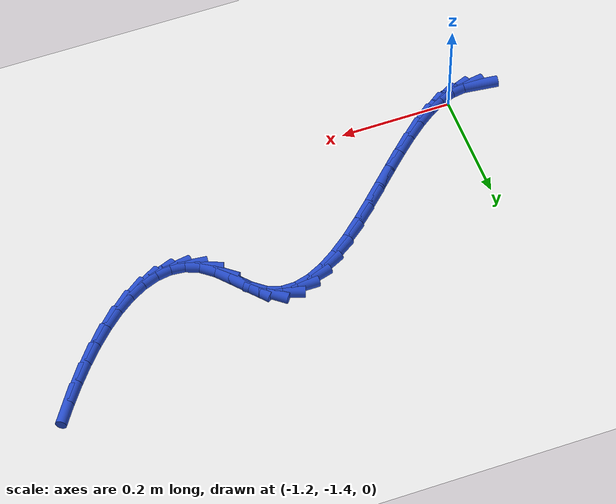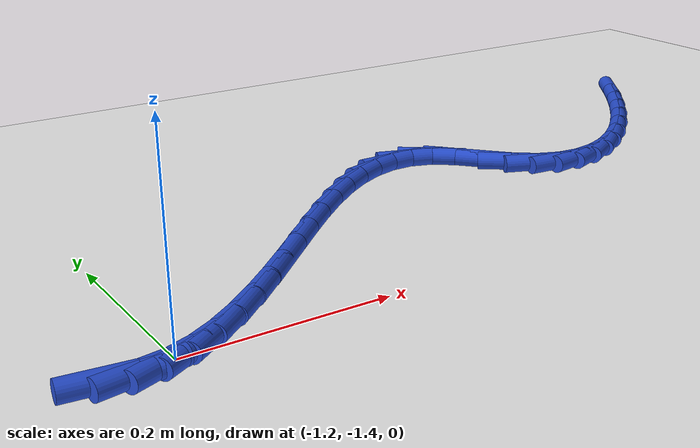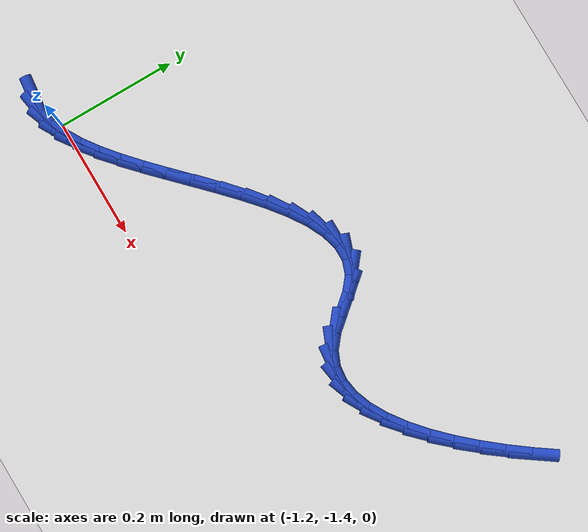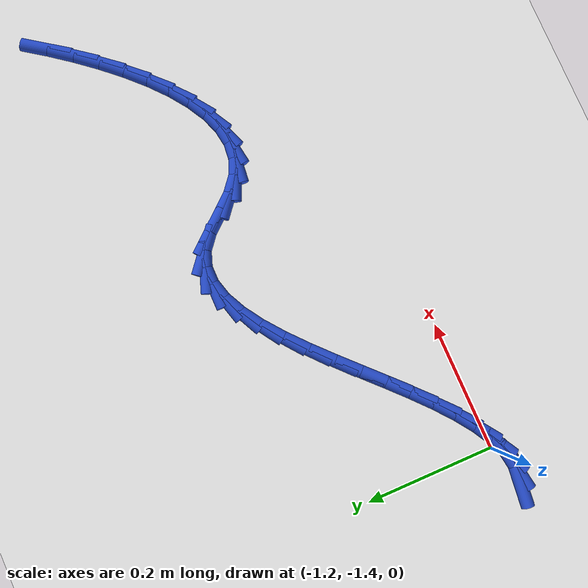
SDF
<sdf version="1.6">
 <world name="default">
  <model name="ground_plane">
   <static>1</static>
   <link name="link">
    <collision name="collision">
     <geometry><plane><normal>0 0 1</normal><size>100 100</size></plane></geometry>
     <surface><friction><ode><mu>100</mu><mu2>50</mu2></ode></friction></surface>
    </collision>
    <visual name="visual">
     <cast_shadows>0</cast_shadows>
     <geometry><plane><normal>0 0 1</normal><size>100 100</size></plane></geometry>
     <material>
      <script><uri>file://media/materials/scripts/gazebo.material</uri><name>Gazebo/WhiteGlow</name></script>
     </material>
    </visual>
   </link>
  </model>
  <model name="line">
   <link name="link_204">
    <pose>-1.2579613288841065 -1.4167862478045805 0.01 0 1.57 -0.11828002498489819</pose>
    <collision name="collision">
     <geometry><cylinder><radius>0.01</radius><length>0.08</length></cylinder></geometry>
    </collision>
    <visual name="visual">
     <material>
      <script><name>Gazebo/Blue</name><uri>file://media/materials/scripts/gazebo.material</uri></script>
     </material>
     <geometry><cylinder><radius>0.01</radius><length>0.08</length></cylinder></geometry>
    </visual>
   </link>
   <link name="link_205">
    <pose>-1.2350954992834695 -1.419503502146916 0.01 0 1.57 0.15506620745880884</pose>
    <collision name="collision">
     <geometry><cylinder><radius>0.01</radius><length>0.08</length></cylinder></geometry>
    </collision>
    <visual name="visual">
     <material>
      <script><name>Gazebo/Blue</name><uri>file://media/materials/scripts/gazebo.material</uri></script>
     </material>
     <geometry><cylinder><radius>0.01</radius><length>0.08</length></cylinder></geometry>
    </visual>
   </link>
   <link name="link_206">
    <pose>-1.211134876044368 -1.4157579496741062 0.01 0 1.57 0.3683430433403914</pose>
    <collision name="collision">
     <geometry><cylinder><radius>0.01</radius><length>0.08</length></cylinder></geometry>
    </collision>
    <visual name="visual">
     <material>
      <script><name>Gazebo/Blue</name><uri>file://media/materials/scripts/gazebo.material</uri></script>
     </material>
     <geometry><cylinder><radius>0.01</radius><length>0.08</length></cylinder></geometry>
    </visual>
   </link>
   <link name="link_207">
    <pose>-1.186108077649823 -1.4060986526506456 0.01 0 1.57 0.5174665091886366</pose>
    <collision name="collision">
     <geometry><cylinder><radius>0.01</radius><length>0.08</length></cylinder></geometry>
    </collision>
    <visual name="visual">
     <material>
      <script><name>Gazebo/Blue</name><uri>file://media/materials/scripts/gazebo.material</uri></script>
     </material>
     <geometry><cylinder><radius>0.01</radius><length>0.08</length></cylinder></geometry>
    </visual>
   </link>
   <link name="link_208">
    <pose>-1.1600780145160035 -1.3912822715221778 0.01 0 1.57 0.619075457614896</pose>
    <collision name="collision">
     <geometry><cylinder><radius>0.01</radius><length>0.08</length></cylinder></geometry>
    </collision>
    <visual name="visual">
     <material>
      <script><name>Gazebo/Blue</name><uri>file://media/materials/scripts/gazebo.material</uri></script>
     </material>
     <geometry><cylinder><radius>0.01</radius><length>0.08</length></cylinder></geometry>
    </visual>
   </link>
   <link name="link_209">
    <pose>-1.1331075970590763 -1.3720654667343437 0.01 0 1.57 0.6873611089525551</pose>
    <collision name="collision">
     <geometry><cylinder><radius>0.01</radius><length>0.08</length></cylinder></geometry>
    </collision>
    <visual name="visual">
     <material>
      <script><name>Gazebo/Blue</name><uri>file://media/materials/scripts/gazebo.material</uri></script>
     </material>
     <geometry><cylinder><radius>0.01</radius><length>0.08</length></cylinder></geometry>
    </visual>
   </link>
   <link name="link_210">
    <pose>-1.1052597356952119 -1.3492048987327891 0.01 0 1.57 0.7318797433192794</pose>
    <collision name="collision">
     <geometry><cylinder><radius>0.01</radius><length>0.08</length></cylinder></geometry>
    </collision>
    <visual name="visual">
     <material>
      <script><name>Gazebo/Blue</name><uri>file://media/materials/scripts/gazebo.material</uri></script>
     </material>
     <geometry><cylinder><radius>0.01</radius><length>0.08</length></cylinder></geometry>
    </visual>
   </link>
   <link name="link_211">
    <pose>-1.076597340840576 -1.323457227963154 0.01 0 1.57 0.7585962793623995</pose>
    <collision name="collision">
     <geometry><cylinder><radius>0.01</radius><length>0.08</length></cylinder></geometry>
    </collision>
    <visual name="visual">
     <material>
      <script><name>Gazebo/Blue</name><uri>file://media/materials/scripts/gazebo.material</uri></script>
     </material>
     <geometry><cylinder><radius>0.01</radius><length>0.08</length></cylinder></geometry>
    </visual>
   </link>
   <link name="link_212">
    <pose>-1.0471833229113392 -1.2955791148710838 0.01 0 1.57 0.7708913527871738</pose>
    <collision name="collision">
     <geometry><cylinder><radius>0.01</radius><length>0.08</length></cylinder></geometry>
    </collision>
    <visual name="visual">
     <material>
      <script><name>Gazebo/Blue</name><uri>file://media/materials/scripts/gazebo.material</uri></script>
     </material>
     <geometry><cylinder><radius>0.01</radius><length>0.08</length></cylinder></geometry>
    </visual>
   </link>
   <link name="link_213">
    <pose>-1.0170920144249112 -1.266348439542448 0.01 0 1.57 0.7688753340192026</pose>
    <collision name="collision">
     <geometry><cylinder><radius>0.01</radius><length>0.08</length></cylinder></geometry>
    </collision>
    <visual name="visual">
     <material>
      <script><name>Gazebo/Blue</name><uri>file://media/materials/scripts/gazebo.material</uri></script>
     </material>
     <geometry><cylinder><radius>0.01</radius><length>0.08</length></cylinder></geometry>
    </visual>
   </link>
   <link name="link_214">
    <pose>-0.9865201874000353 -1.2367705465298313 0.01 0 1.57 0.7518398955622182</pose>
    <collision name="collision">
     <geometry><cylinder><radius>0.01</radius><length>0.08</length></cylinder></geometry>
    </collision>
    <visual name="visual">
     <material>
      <script><name>Gazebo/Blue</name><uri>file://media/materials/scripts/gazebo.material</uri></script>
     </material>
     <geometry><cylinder><radius>0.01</radius><length>0.08</length></cylinder></geometry>
    </visual>
   </link>
   <link name="link_215">
    <pose>-0.9557389582008579 -1.20798889510122 0.01 0 1.57 0.7181168896828272</pose>
    <collision name="collision">
     <geometry><cylinder><radius>0.01</radius><length>0.08</length></cylinder></geometry>
    </collision>
    <visual name="visual">
     <material>
      <script><name>Gazebo/Blue</name><uri>file://media/materials/scripts/gazebo.material</uri></script>
     </material>
     <geometry><cylinder><radius>0.01</radius><length>0.08</length></cylinder></geometry>
    </visual>
   </link>
   <link name="link_216">
    <pose>-0.9250204892010158 -1.1811488877699459 0.01 0 1.57 0.6635261414045817</pose>
    <collision name="collision">
     <geometry><cylinder><radius>0.01</radius><length>0.08</length></cylinder></geometry>
    </collision>
    <visual name="visual">
     <material>
      <script><name>Gazebo/Blue</name><uri>file://media/materials/scripts/gazebo.material</uri></script>
     </material>
     <geometry><cylinder><radius>0.01</radius><length>0.08</length></cylinder></geometry>
    </visual>
   </link>
   <link name="link_217">
    <pose>-0.8946369427741481 -1.157395927049342 0.01 0 1.57 0.5802798855163582</pose>
    <collision name="collision">
     <geometry><cylinder><radius>0.01</radius><length>0.08</length></cylinder></geometry>
    </collision>
    <visual name="visual">
     <material>
      <script><name>Gazebo/Blue</name><uri>file://media/materials/scripts/gazebo.material</uri></script>
     </material>
     <geometry><cylinder><radius>0.01</radius><length>0.08</length></cylinder></geometry>
    </visual>
   </link>
   <link name="link_218">
    <pose>-0.8648604812938908 -1.1378754154527395 0.01 0 1.57 0.4551418507110232</pose>
    <collision name="collision">
     <geometry><cylinder><radius>0.01</radius><length>0.08</length></cylinder></geometry>
    </collision>
    <visual name="visual">
     <material>
      <script><name>Gazebo/Blue</name><uri>file://media/materials/scripts/gazebo.material</uri></script>
     </material>
     <geometry><cylinder><radius>0.01</radius><length>0.08</length></cylinder></geometry>
    </visual>
   </link>
   <link name="link_219">
    <pose>-0.8359632671338837 -1.1237327554934717 0.01 0 1.57 0.26800796659139764</pose>
    <collision name="collision">
     <geometry><cylinder><radius>0.01</radius><length>0.08</length></cylinder></geometry>
    </collision>
    <visual name="visual">
     <material>
      <script><name>Gazebo/Blue</name><uri>file://media/materials/scripts/gazebo.material</uri></script>
     </material>
     <geometry><cylinder><radius>0.01</radius><length>0.08</length></cylinder></geometry>
    </visual>
   </link>
   <link name="link_220">
    <pose>-0.8082174626677621 -1.11611334968487 0.01 0 1.57 -0.0018710722243075707</pose>
    <collision name="collision">
     <geometry><cylinder><radius>0.01</radius><length>0.08</length></cylinder></geometry>
    </collision>
    <visual name="visual">
     <material>
      <script><name>Gazebo/Blue</name><uri>file://media/materials/scripts/gazebo.material</uri></script>
     </material>
     <geometry><cylinder><radius>0.01</radius><length>0.08</length></cylinder></geometry>
    </visual>
   </link>
   <link name="link_221">
    <pose>-0.7818952302691659 -1.1161626005402672 0.01 0 1.57 -0.34547544222251675</pose>
    <collision name="collision">
     <geometry><cylinder><radius>0.01</radius><length>0.08</length></cylinder></geometry>
    </collision>
    <visual name="visual">
     <material>
      <script><name>Gazebo/Blue</name><uri>file://media/materials/scripts/gazebo.material</uri></script>
     </material>
     <geometry><cylinder><radius>0.01</radius><length>0.08</length></cylinder></geometry>
    </visual>
   </link>
   <link name="link_222">
    <pose>-0.757268732311731 -1.1250259105729956 0.01 0 1.57 -0.6872243176074737</pose>
    <collision name="collision">
     <geometry><cylinder><radius>0.01</radius><length>0.08</length></cylinder></geometry>
    </collision>
    <visual name="visual">
     <material>
      <script><name>Gazebo/Blue</name><uri>file://media/materials/scripts/gazebo.material</uri></script>
     </material>
     <geometry><cylinder><radius>0.01</radius><length>0.08</length></cylinder></geometry>
    </visual>
   </link>
   <link name="link_223">
    <pose>-0.7345693995284315 -1.1436548066789318 0.01 0 1.57 -0.8699567918379159</pose>
    <collision name="collision">
     <geometry><cylinder><radius>0.01</radius><length>0.08</length></cylinder></geometry>
    </collision>
    <visual name="visual">
     <material>
      <script><name>Gazebo/Blue</name><uri>file://media/materials/scripts/gazebo.material</uri></script>
     </material>
     <geometry><cylinder><radius>0.01</radius><length>0.08</length></cylinder></geometry>
    </visual>
   </link>
   <link name="link_224">
    <pose>-0.7131875094245788 -1.1689970707850577 0.01 0 1.57 -0.8659904046724395</pose>
    <collision name="collision">
     <geometry><cylinder><radius>0.01</radius><length>0.08</length></cylinder></geometry>
    </collision>
    <visual name="visual">
     <material>
      <script><name>Gazebo/Blue</name><uri>file://media/materials/scripts/gazebo.material</uri></script>
     </material>
     <geometry><cylinder><radius>0.01</radius><length>0.08</length></cylinder></geometry>
    </visual>
   </link>
   <link name="link_225">
    <pose>-0.6917221369746583 -1.1942344965917022 0.01 0 1.57 -0.6856918559978494</pose>
    <collision name="collision">
     <geometry><cylinder><radius>0.01</radius><length>0.08</length></cylinder></geometry>
    </collision>
    <visual name="visual">
     <material>
      <script><name>Gazebo/Blue</name><uri>file://media/materials/scripts/gazebo.material</uri></script>
     </material>
     <geometry><cylinder><radius>0.01</radius><length>0.08</length></cylinder></geometry>
    </visual>
   </link>
   <link name="link_226">
    <pose>-0.6688608209003364 -1.2129377726816253 0.01 0 1.57 -0.4017166205366539</pose>
    <collision name="collision">
     <geometry><cylinder><radius>0.01</radius><length>0.08</length></cylinder></geometry>
    </collision>
    <visual name="visual">
     <material>
      <script><name>Gazebo/Blue</name><uri>file://media/materials/scripts/gazebo.material</uri></script>
     </material>
     <geometry><cylinder><radius>0.01</radius><length>0.08</length></cylinder></geometry>
    </visual>
   </link>
   <link name="link_227">
    <pose>-0.6443334178784519 -1.2233574589983358 0.01 0 1.57 -0.107802261296282</pose>
    <collision name="collision">
     <geometry><cylinder><radius>0.01</radius><length>0.08</length></cylinder></geometry>
    </collision>
    <visual name="visual">
     <material>
      <script><name>Gazebo/Blue</name><uri>file://media/materials/scripts/gazebo.material</uri></script>
     </material>
     <geometry><cylinder><radius>0.01</radius><length>0.08</length></cylinder></geometry>
    </visual>
   </link>
   <link name="link_228">
    <pose>-0.6184085485756378 -1.2261630953690823 0.01 0 1.57 0.15110274950589794</pose>
    <collision name="collision">
     <geometry><cylinder><radius>0.01</radius><length>0.08</length></cylinder></geometry>
    </collision>
    <visual name="visual">
     <material>
      <script><name>Gazebo/Blue</name><uri>file://media/materials/scripts/gazebo.material</uri></script>
     </material>
     <geometry><cylinder><radius>0.01</radius><length>0.08</length></cylinder></geometry>
    </visual>
   </link>
   <link name="link_229">
    <pose>-0.5913593487351557 -1.2220444937249537 0.01 0 1.57 0.35532163826709723</pose>
    <collision name="collision">
     <geometry><cylinder><radius>0.01</radius><length>0.08</length></cylinder></geometry>
    </collision>
    <visual name="visual">
     <material>
      <script><name>Gazebo/Blue</name><uri>file://media/materials/scripts/gazebo.material</uri></script>
     </material>
     <geometry><cylinder><radius>0.01</radius><length>0.08</length></cylinder></geometry>
    </visual>
   </link>
   <link name="link_230">
    <pose>-0.5634589541002707 -1.2116914659970393 0.01 0 1.57 0.5091429332408716</pose>
    <collision name="collision">
     <geometry><cylinder><radius>0.01</radius><length>0.08</length></cylinder></geometry>
    </collision>
    <visual name="visual">
     <material>
      <script><name>Gazebo/Blue</name><uri>file://media/materials/scripts/gazebo.material</uri></script>
     </material>
     <geometry><cylinder><radius>0.01</radius><length>0.08</length></cylinder></geometry>
    </visual>
   </link>
   <link name="link_231">
    <pose>-0.5349805004142439 -1.1957938241164263 0.01 0 1.57 0.6246728545491353</pose>
    <collision name="collision">
     <geometry><cylinder><radius>0.01</radius><length>0.08</length></cylinder></geometry>
    </collision>
    <visual name="visual">
     <material>
      <script><name>Gazebo/Blue</name><uri>file://media/materials/scripts/gazebo.material</uri></script>
     </material>
     <geometry><cylinder><radius>0.01</radius><length>0.08</length></cylinder></geometry>
    </visual>
   </link>
   <link name="link_232">
    <pose>-0.5061971234203412 -1.1750413800142063 0.01 0 1.57 0.712985602425625</pose>
    <collision name="collision">
     <geometry><cylinder><radius>0.01</radius><length>0.08</length></cylinder></geometry>
    </collision>
    <visual name="visual">
     <material>
      <script><name>Gazebo/Blue</name><uri>file://media/materials/scripts/gazebo.material</uri></script>
     </material>
     <geometry><cylinder><radius>0.01</radius><length>0.08</length></cylinder></geometry>
    </visual>
   </link>
   <link name="link_233">
    <pose>-0.4773819588618234 -1.1501239456214654 0.01 0 1.57 0.7822172896912954</pose>
    <collision name="collision">
     <geometry><cylinder><radius>0.01</radius><length>0.08</length></cylinder></geometry>
    </collision>
    <visual name="visual">
     <material>
      <script><name>Gazebo/Blue</name><uri>file://media/materials/scripts/gazebo.material</uri></script>
     </material>
     <geometry><cylinder><radius>0.01</radius><length>0.08</length></cylinder></geometry>
    </visual>
   </link>
   <link name="link_234">
    <pose>-0.44880814248195583 -1.1217313328692946 0.01 0 1.57 0.8379962663653613</pose>
    <collision name="collision">
     <geometry><cylinder><radius>0.01</radius><length>0.08</length></cylinder></geometry>
    </collision>
    <visual name="visual">
     <material>
      <script><name>Gazebo/Blue</name><uri>file://media/materials/scripts/gazebo.material</uri></script>
     </material>
     <geometry><cylinder><radius>0.01</radius><length>0.08</length></cylinder></geometry>
    </visual>
   </link>
   <link name="link_235">
    <pose>-0.42074881002400066 -1.0905533536887813 0.01 0 1.57 0.8842048749347651</pose>
    <collision name="collision">
     <geometry><cylinder><radius>0.01</radius><length>0.08</length></cylinder></geometry>
    </collision>
    <visual name="visual">
     <material>
      <script><name>Gazebo/Blue</name><uri>file://media/materials/scripts/gazebo.material</uri></script>
     </material>
     <geometry><cylinder><radius>0.01</radius><length>0.08</length></cylinder></geometry>
    </visual>
   </link>
   <link name="link_236">
    <pose>-0.39347709723122076 -1.057279820011014 0.01 0 1.57 0.9235869263254002</pose>
    <collision name="collision">
     <geometry><cylinder><radius>0.01</radius><length>0.08</length></cylinder></geometry>
    </collision>
    <visual name="visual">
     <material>
      <script><name>Gazebo/Blue</name><uri>file://media/materials/scripts/gazebo.material</uri></script>
     </material>
     <geometry><cylinder><radius>0.01</radius><length>0.08</length></cylinder></geometry>
    </visual>
   </link>
   <link name="link_237">
    <pose>-0.3672661398468807 -1.0226005437670835 0.01 0 1.57 0.9581687735687884</pose>
    <collision name="collision">
     <geometry><cylinder><radius>0.01</radius><length>0.08</length></cylinder></geometry>
    </collision>
    <visual name="visual">
     <material>
      <script><name>Gazebo/Blue</name><uri>file://media/materials/scripts/gazebo.material</uri></script>
     </material>
     <geometry><cylinder><radius>0.01</radius><length>0.08</length></cylinder></geometry>
    </visual>
   </link>
  </model>
 </world>
</sdf>
